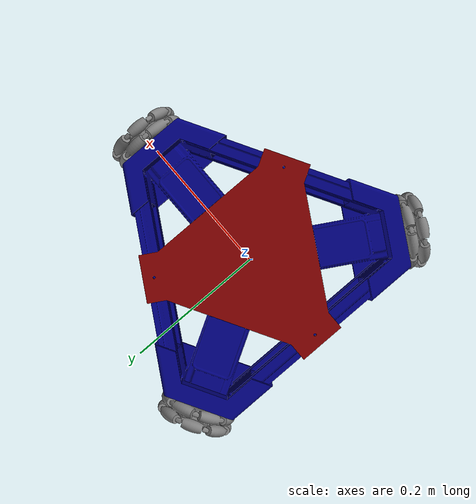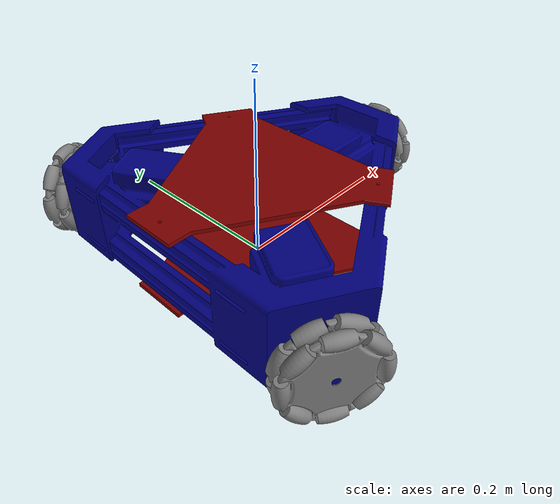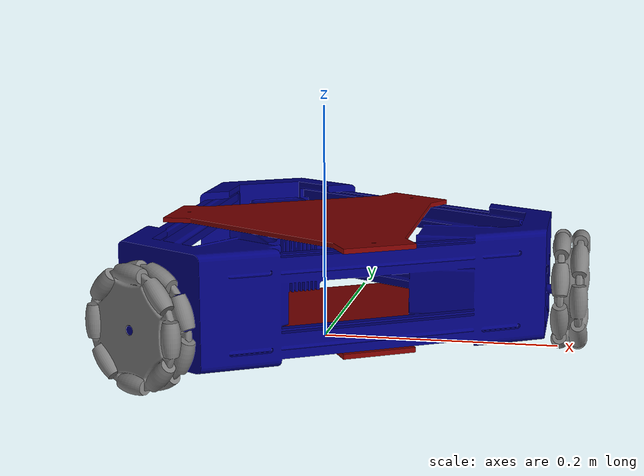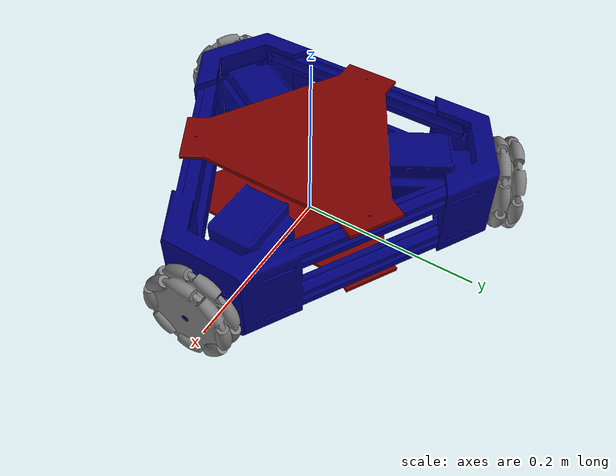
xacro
<?xml version="1.0"?>
<robot name="ow" xmlns:xacro="http://www.ros.org/wiki/xacro">

    <xacro:arg name="sim_mode" default="true"/>
    <xacro:arg name="sim_namespace" default="/"/>
    <xacro:arg name="controller_config" default="controllers.yaml"/>

    <xacro:include filename="common_properties.xacro"/>
    <xacro:include filename="materials.xacro"/>

    <!-- Plugin de ros2_control para manejar el robot-->
    <xacro:include filename="ros2_control.xacro"/>

    <xacro:include filename="mobile_base.xacro"/>
    <xacro:include filename="mobile_base_gazebo.xacro"/>

    <!--xacro:include filename="omniwheel.xacro"/-->

</robot>

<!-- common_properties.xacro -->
<robot xmlns:xacro="http://www.ros.org/wiki/xacro">

    <!--Parametros-->
    <xacro:property name="base_plate_height" value="0.004"/>
    <xacro:property name="corner_height" value="0.091"/>
    <xacro:property name="corner_shaft_height" value="0.04"/>
    <xacro:property name="omniwheel_radius" value="0.05"/>
    <xacro:property name="base_radius" value="0.22"/>

    <!-- Simulación -->
    <xacro:property name="coef1" value="1.0"/>
    <xacro:property name="coef2" value="0.001"/>

</robot>

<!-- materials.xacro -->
<robot xmlns:xacro="http://www.ros.org/wiki/xacro">

        <material name="blue">
            <color rgba="0 0 0.5 1"/>
        </material>

        <material name="green">
            <color rgba="0 0.5 0 1"/>
        </material>

        <material name="grey">
            <color rgba="0.5 0.5 0.5 1"/>
        </material>

        <material name="red">
            <color rgba="0.5 0 0 1"/>
        </material>

        <material name="orange">
            <color rgba="1.0 0.5 0.0 1"/>
        </material>

        <material name="black">
            <color rgba="0.1 0.1 0.1 1"/>
        </material>

</robot>

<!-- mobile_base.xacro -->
<robot xmlns:xacro="http://www.ros.org/wiki/xacro">

    <!-- Base Footprint para paquetes de navegacion -->
    <link name="base_footprint">
        <origin xyz="0 0 0" rpy="0 0 0"/>
    </link>

    <!-- Base Link del que se referencian el resto de elementos -->
    <link name ="base_link">
        <visual>
            <geometry>
                <mesh filename="file://$(find ow_description)/meshes/BodyFrame.stl" scale="0.001 0.001 0.001"/>
            </geometry>
            <origin xyz="0 0 ${corner_height - corner_shaft_height }" rpy="0 0 0"/>
            <material name="blue"/>
        </visual>
        <collision>
            <geometry>
                <mesh filename="file://$(find ow_description)/meshes/BodyFrame.stl" scale="0.001 0.001 0.001"/>

                <!--cylinder radius="${base_radius}" length="${corner_height - corner_shaft_height }"/-->
            </geometry>
            <origin xyz="0 0 ${corner_height - corner_shaft_height }" rpy="0 0 0"/>
        </collision>
         <inertial>
            <mass value="5"/>
            <origin xyz="0 0 0" rpy="0 0 0"/>
            <inertia ixx="0.0004055" ixy="0" ixz="0" iyy="0.0004055" iyz="0" izz="0"/>
        </inertial>
    </link>

    <link name="bottom_cover_link">
        <visual>
            <geometry>
                <mesh filename="file://$(find ow_description)/meshes/base.stl" scale="0.001 0.001 0.001"/>
            </geometry>
            <origin xyz="0 0 0" rpy="0 0 0"/>
            <material name="red"/>
        </visual>
        <inertial>
            <mass value="0.129"/>
            <origin xyz="0 0 0" rpy="0 0 0"/>
            <inertia ixx="0.0004055" ixy="0" ixz="0" iyy="0.0004055" iyz="0" izz="0"/>
        </inertial>
    </link>

    <link name="top_cover_link">
        <visual>
            <geometry>
                <mesh filename="file://$(find ow_description)/meshes/base.stl" scale="0.001 0.001 0.001"/>
            </geometry>
            <origin xyz="0 0 0" rpy="0 0 0"/>
            <material name="red"/>
        </visual>
        <inertial>
            <mass value="0.129"/>
            <origin xyz="0 0 0" rpy="0 0 0"/>
            <inertia ixx="0.0004055" ixy="0" ixz="0" iyy="0.0004055" iyz="0" izz="0"/>
        </inertial>
    </link>

    <xacro:macro name="omniwheel" params="prefix angle">
        <link name="${prefix}_wheel_link">
            <visual>
                <geometry>
                    <mesh filename="file://$(find ow_description)/meshes/omniwheel.stl" scale="0.001 0.001 0.001"/>
                </geometry>
                <origin xyz="0 0 0" rpy="${pi / 2.0} 0 0"/>
                <material name="grey"/>
            </visual>
            <inertial>
                <mass value="0.582"/>
                <origin xyz="0 0 0" rpy="0 0 0"/>
                <inertia ixx="0.0005937" ixy="0" ixz="0" iyy="0.0005937" iyz="0" izz="0.0009841"/>
            </inertial>
            <collision>
                <geometry>
                    <!--mesh filename="file://$(find ow_description)/meshes/omniwheel.stl" scale="0.001 0.001 0.001"/-->
                    <cylinder radius="${omniwheel_radius}" length="0.005"/>
                </geometry>
                <origin xyz="0 0 0" rpy="${pi / 2.0} 0 0"/>
            </collision>
        </link>

        <joint name="base_${prefix}_wheel_joint" type="continuous">
            <parent link="base_link"/>
            <child link="${prefix}_wheel_link"/>
            <origin xyz="${cos (angle) * base_radius} ${sin (angle) * base_radius} 0" rpy="0 0 ${angle - pi / 2.0}"/>
            <axis xyz="0 1 0"/>
        </joint>
    </xacro:macro>

    <xacro:omniwheel prefix="front" angle="${pi / 2.0}"/>
    <xacro:omniwheel prefix="left" angle="${pi + pi / 6.0}"/>
    <xacro:omniwheel prefix="right" angle="${- pi / 6.0}"/>

    <!-- Joints -->

    <joint name="base_joint" type="fixed">
        <parent link="base_footprint"/>
        <child link="base_link"/>
        <origin xyz="0 0 ${omniwheel_radius}" rpy="0 0 ${-pi/2.0}"/>
    </joint>

    <joint name="base_bottom_cover_joint" type="fixed">
        <parent link="base_link"/>
        <child link="bottom_cover_link"/>
        <origin xyz="0 0 ${-corner_shaft_height + base_plate_height * 2 }" rpy="0 0 0"/>
    </joint>

    <joint name="base_top_cover_joint" type="fixed">
        <parent link="base_link"/>
        <child link="top_cover_link"/>
        <origin xyz="0 0 ${corner_height - corner_shaft_height }" rpy="0 0 0"/>
    </joint>

</robot>
